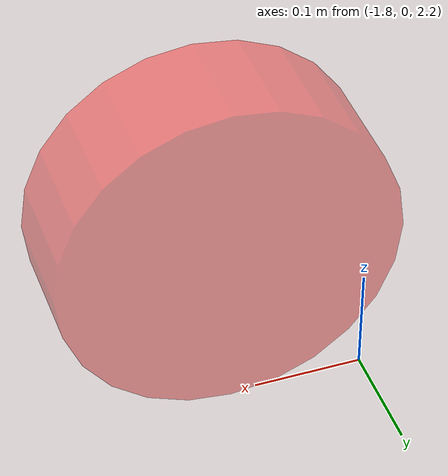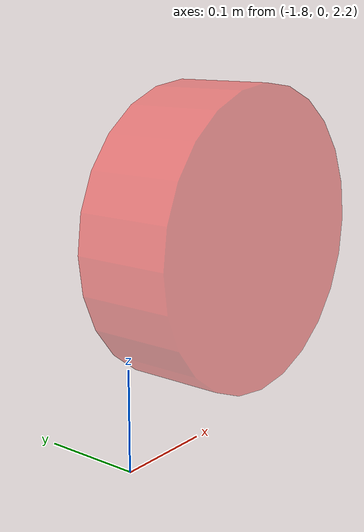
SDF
<?xml version="1.0" ?>
<sdf version="1.5">

  <model name="light_red">
    <static>true</static>

    <link name='Red_light_source'>

            <pose>-1.66 0 2.4 1.57 0 0</pose>

            <light name='red' type='spot'>
              <pose>0 0 0.0 1.57 0 0</pose>
              <attenuation>
                <range>30</range>
                <linear>0.05</linear>
              </attenuation>
              <diffuse>0.5 1 1 1</diffuse>
              <specular>1 1 1 1</specular>
              <spot>
                <inner_angle>0.3</inner_angle>
                <outer_angle>0.35</outer_angle>
                <falloff>1</falloff>
              </spot>
              <direction>0 0 -1</direction>
            </light>

            <visual name='red'>
              <geometry>
                <cylinder>
                  <radius>0.15</radius>
                  <length>0.1</length>
                </cylinder>
                <sphere>
                  <radius>0.4</radius>
                </sphere>
              </geometry>
              <transparency>0.6</transparency>
              <material>
                <ambient> 1 0 0 1</ambient>
                <diffuse> 1 0 0 1</diffuse>
                <specular>1 1 1 1</specular>
                <emissive>1 0 0 1</emissive>
              </material>
            </visual>
          </link>

    <plugin name='red_light_controller' filename='libLedPlugin.so'>
      <enable>true</enable>

      <light>
        <id>Red_light_source/red</id>
        <duration>10</duration>
        <interval>10</interval>
        <enable>true</enable>
      </light>

      </plugin>
  </model>

</sdf>
